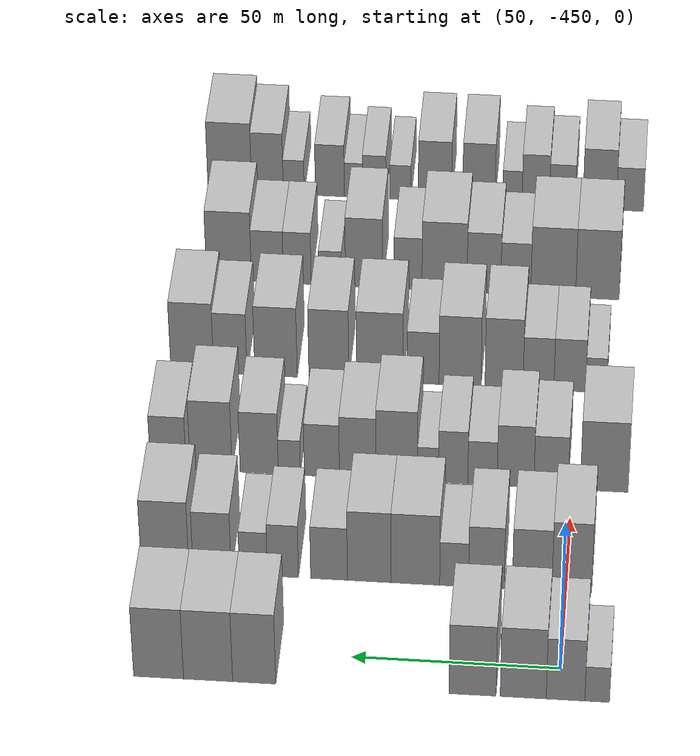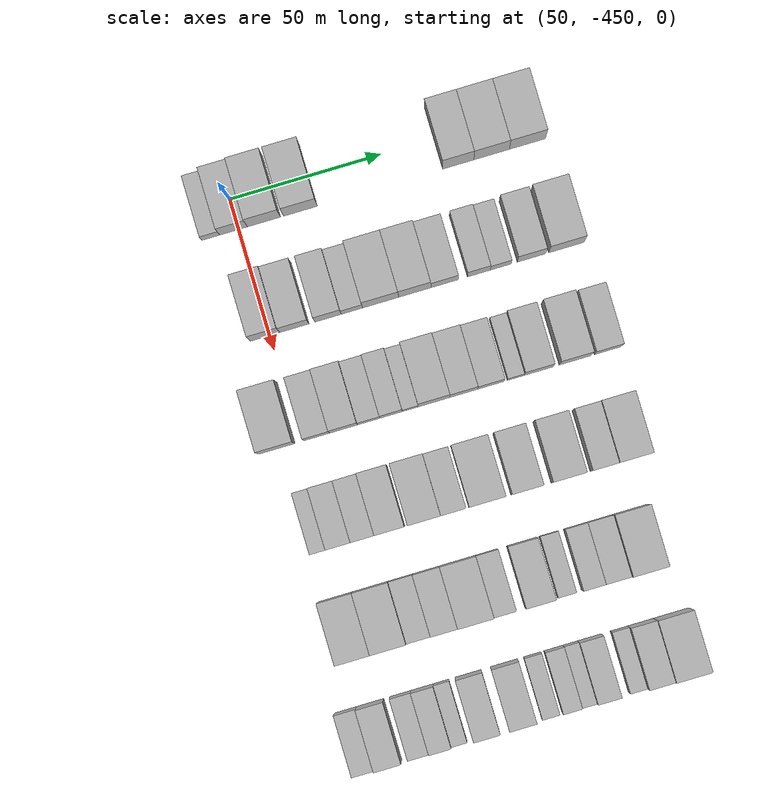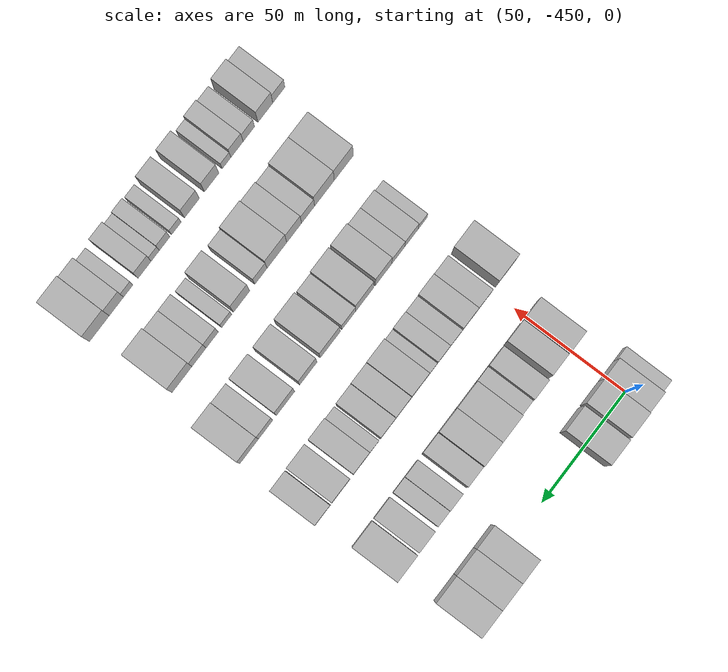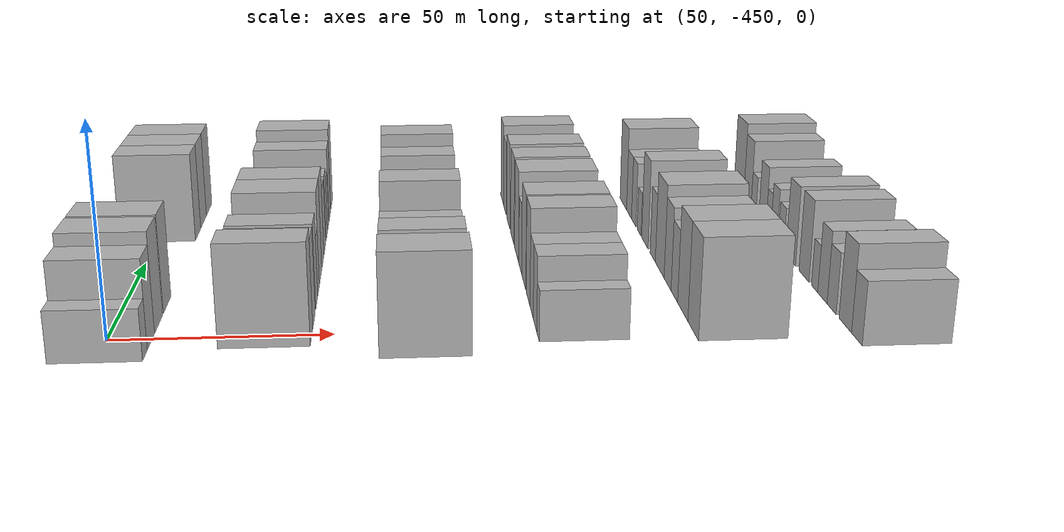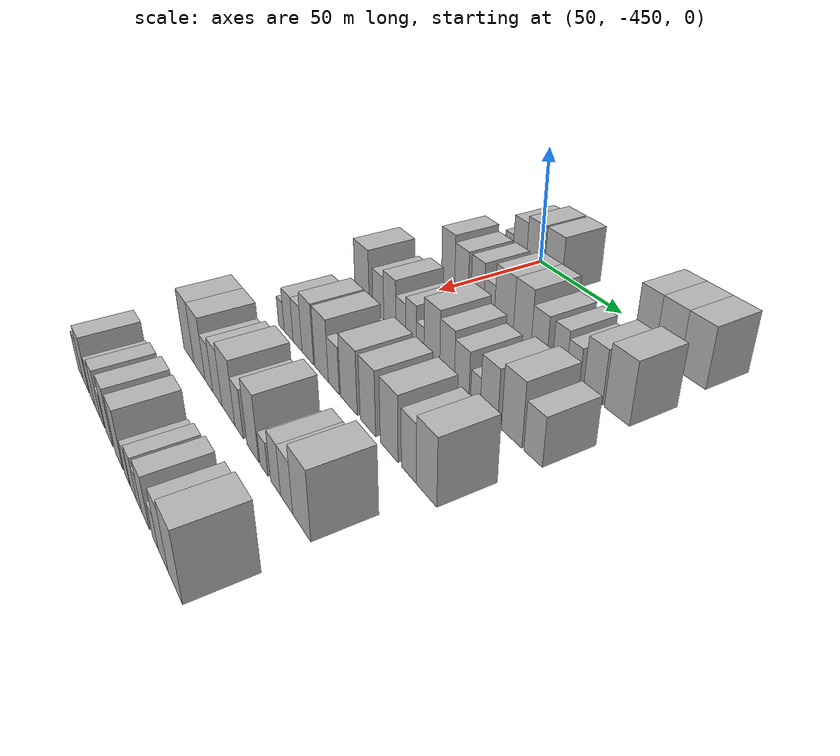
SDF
<sdf version="1.6">
 <world name="default">
  <model name="building_9">
   <static>1</static>
   <pose>50.0000 -459.1418 0 0.000000 0.000000 0.000000</pose>
   <link name="link">
    <pose>0 0 6.00 0 0 0</pose>
    <collision name="collision"><geometry><box><size>20.0000 5.8550 12.0000</size></box></geometry></collision>
    <visual name="visual">
     <cast_shadows>0</cast_shadows>
     <geometry><box><size>20.0000 5.8550 12.0000</size></box></geometry>
     <material>
      <script>
       <uri>model://HANNAS_wall/materials/scripts</uri>
       <uri>model://HANNAS_wall/materials/textures</uri>
       <name>vrc/HANNAS_wall</name>
      </script>
     </material>
    </visual>
   </link>
  </model>
  <model name="building_10">
   <static>1</static>
   <pose>50.0000 -451.6347 0 0.000000 0.000000 0.000000</pose>
   <link name="link">
    <pose>0 0 10.50 0 0 0</pose>
    <collision name="collision"><geometry><box><size>20.0000 9.1591 21.0000</size></box></geometry></collision>
    <visual name="visual">
     <cast_shadows>0</cast_shadows>
     <geometry><box><size>20.0000 9.1591 21.0000</size></box></geometry>
     <material>
      <script>
       <uri>model://HANNAS_wall/materials/scripts</uri>
       <uri>model://HANNAS_wall/materials/textures</uri>
       <name>vrc/HANNAS_wall</name>
      </script>
     </material>
    </visual>
   </link>
  </model>
  <model name="building_11">
   <static>1</static>
   <pose>50.0000 -441.5983 0 0.000000 0.000000 0.000000</pose>
   <link name="link">
    <pose>0 0 12.00 0 0 0</pose>
    <collision name="collision"><geometry><box><size>20.0000 10.9137 24.0000</size></box></geometry></collision>
    <visual name="visual">
     <cast_shadows>0</cast_shadows>
     <geometry><box><size>20.0000 10.9137 24.0000</size></box></geometry>
     <material>
      <script>
       <uri>model://HANNAS_wall/materials/scripts</uri>
       <uri>model://HANNAS_wall/materials/textures</uri>
       <name>vrc/HANNAS_wall</name>
      </script>
     </material>
    </visual>
   </link>
  </model>
  <model name="building_12">
   <static>1</static>
   <pose>50.0000 -429.5720 0 0.000000 0.000000 0.000000</pose>
   <link name="link">
    <pose>0 0 12.00 0 0 0</pose>
    <collision name="collision"><geometry><box><size>20.0000 11.1389 24.0000</size></box></geometry></collision>
    <visual name="visual">
     <cast_shadows>0</cast_shadows>
     <geometry><box><size>20.0000 11.1389 24.0000</size></box></geometry>
     <material>
      <script>
       <uri>model://HANNAS_wall/materials/scripts</uri>
       <uri>model://HANNAS_wall/materials/textures</uri>
       <name>vrc/HANNAS_wall</name>
      </script>
     </material>
    </visual>
   </link>
  </model>
  <model name="building_13">
   <static>1</static>
   <pose>50.0000 -377.5228 0 0.000000 0.000000 0.000000</pose>
   <link name="link">
    <pose>0 0 12.00 0 0 0</pose>
    <collision name="collision"><geometry><box><size>20.0000 10.3199 24.0000</size></box></geometry></collision>
    <visual name="visual">
     <cast_shadows>0</cast_shadows>
     <geometry><box><size>20.0000 10.3199 24.0000</size></box></geometry>
     <material>
      <script>
       <uri>model://HANNAS_wall/materials/scripts</uri>
       <uri>model://HANNAS_wall/materials/textures</uri>
       <name>vrc/HANNAS_wall</name>
      </script>
     </material>
    </visual>
   </link>
  </model>
  <model name="building_14">
   <static>1</static>
   <pose>50.0000 -366.5025 0 0.000000 0.000000 0.000000</pose>
   <link name="link">
    <pose>0 0 12.00 0 0 0</pose>
    <collision name="collision"><geometry><box><size>20.0000 11.7208 24.0000</size></box></geometry></collision>
    <visual name="visual">
     <cast_shadows>0</cast_shadows>
     <geometry><box><size>20.0000 11.7208 24.0000</size></box></geometry>
     <material>
      <script>
       <uri>model://HANNAS_wall/materials/scripts</uri>
       <uri>model://HANNAS_wall/materials/textures</uri>
       <name>vrc/HANNAS_wall</name>
      </script>
     </material>
    </visual>
   </link>
  </model>
  <model name="building_15">
   <static>1</static>
   <pose>50.0000 -354.6723 0 0.000000 0.000000 0.000000</pose>
   <link name="link">
    <pose>0 0 12.00 0 0 0</pose>
    <collision name="collision"><geometry><box><size>20.0000 11.9396 24.0000</size></box></geometry></collision>
    <visual name="visual">
     <cast_shadows>0</cast_shadows>
     <geometry><box><size>20.0000 11.9396 24.0000</size></box></geometry>
     <material>
      <script>
       <uri>model://HANNAS_wall/materials/scripts</uri>
       <uri>model://HANNAS_wall/materials/textures</uri>
       <name>vrc/HANNAS_wall</name>
      </script>
     </material>
    </visual>
   </link>
  </model>
  <model name="building_128">
   <static>1</static>
   <pose>85.0000 -451.5183 0 0.000000 0.000000 0.000000</pose>
   <link name="link">
    <pose>0 0 12.00 0 0 0</pose>
    <collision name="collision"><geometry><box><size>20.0000 9.6491 24.0000</size></box></geometry></collision>
    <visual name="visual">
     <cast_shadows>0</cast_shadows>
     <geometry><box><size>20.0000 9.6491 24.0000</size></box></geometry>
     <material>
      <script>
       <uri>model://HANNAS_wall/materials/scripts</uri>
       <uri>model://HANNAS_wall/materials/textures</uri>
       <name>vrc/HANNAS_wall</name>
      </script>
     </material>
    </visual>
   </link>
  </model>
  <model name="building_129">
   <static>1</static>
   <pose>85.0000 -441.8852 0 0.000000 0.000000 0.000000</pose>
   <link name="link">
    <pose>0 0 10.50 0 0 0</pose>
    <collision name="collision"><geometry><box><size>20.0000 9.6170 21.0000</size></box></geometry></collision>
    <visual name="visual">
     <cast_shadows>0</cast_shadows>
     <geometry><box><size>20.0000 9.6170 21.0000</size></box></geometry>
     <material>
      <script>
       <uri>model://HANNAS_wall/materials/scripts</uri>
       <uri>model://HANNAS_wall/materials/textures</uri>
       <name>vrc/HANNAS_wall</name>
      </script>
     </material>
    </visual>
   </link>
  </model>
  <model name="building_130">
   <static>1</static>
   <pose>85.0000 -430.7353 0 0.000000 0.000000 0.000000</pose>
   <link name="link">
    <pose>0 0 10.50 0 0 0</pose>
    <collision name="collision"><geometry><box><size>20.0000 8.6828 21.0000</size></box></geometry></collision>
    <visual name="visual">
     <cast_shadows>0</cast_shadows>
     <geometry><box><size>20.0000 8.6828 21.0000</size></box></geometry>
     <material>
      <script>
       <uri>model://HANNAS_wall/materials/scripts</uri>
       <uri>model://HANNAS_wall/materials/textures</uri>
       <name>vrc/HANNAS_wall</name>
      </script>
     </material>
    </visual>
   </link>
  </model>
  <model name="building_131">
   <static>1</static>
   <pose>85.0000 -422.8857 0 0.000000 0.000000 0.000000</pose>
   <link name="link">
    <pose>0 0 7.50 0 0 0</pose>
    <collision name="collision"><geometry><box><size>20.0000 7.0164 15.0000</size></box></geometry></collision>
    <visual name="visual">
     <cast_shadows>0</cast_shadows>
     <geometry><box><size>20.0000 7.0164 15.0000</size></box></geometry>
     <material>
      <script>
       <uri>model://HANNAS_wall/materials/scripts</uri>
       <uri>model://HANNAS_wall/materials/textures</uri>
       <name>vrc/HANNAS_wall</name>
      </script>
     </material>
    </visual>
   </link>
  </model>
  <model name="building_132">
   <static>1</static>
   <pose>85.0000 -413.4418 0 0.000000 0.000000 0.000000</pose>
   <link name="link">
    <pose>0 0 12.00 0 0 0</pose>
    <collision name="collision"><geometry><box><size>20.0000 11.8714 24.0000</size></box></geometry></collision>
    <visual name="visual">
     <cast_shadows>0</cast_shadows>
     <geometry><box><size>20.0000 11.8714 24.0000</size></box></geometry>
     <material>
      <script>
       <uri>model://HANNAS_wall/materials/scripts</uri>
       <uri>model://HANNAS_wall/materials/textures</uri>
       <name>vrc/HANNAS_wall</name>
      </script>
     </material>
    </visual>
   </link>
  </model>
  <model name="building_133">
   <static>1</static>
   <pose>85.0000 -402.1924 0 0.000000 0.000000 0.000000</pose>
   <link name="link">
    <pose>0 0 12.00 0 0 0</pose>
    <collision name="collision"><geometry><box><size>20.0000 10.6272 24.0000</size></box></geometry></collision>
    <visual name="visual">
     <cast_shadows>0</cast_shadows>
     <geometry><box><size>20.0000 10.6272 24.0000</size></box></geometry>
     <material>
      <script>
       <uri>model://HANNAS_wall/materials/scripts</uri>
       <uri>model://HANNAS_wall/materials/textures</uri>
       <name>vrc/HANNAS_wall</name>
      </script>
     </material>
    </visual>
   </link>
  </model>
  <model name="building_134">
   <static>1</static>
   <pose>85.0000 -392.3873 0 0.000000 0.000000 0.000000</pose>
   <link name="link">
    <pose>0 0 9.00 0 0 0</pose>
    <collision name="collision"><geometry><box><size>20.0000 8.9831 18.0000</size></box></geometry></collision>
    <visual name="visual">
     <cast_shadows>0</cast_shadows>
     <geometry><box><size>20.0000 8.9831 18.0000</size></box></geometry>
     <material>
      <script>
       <uri>model://HANNAS_wall/materials/scripts</uri>
       <uri>model://HANNAS_wall/materials/textures</uri>
       <name>vrc/HANNAS_wall</name>
      </script>
     </material>
    </visual>
   </link>
  </model>
  <model name="building_135">
   <static>1</static>
   <pose>85.0000 -381.1187 0 0.000000 0.000000 0.000000</pose>
   <link name="link">
    <pose>0 0 9.00 0 0 0</pose>
    <collision name="collision"><geometry><box><size>20.0000 7.5542 18.0000</size></box></geometry></collision>
    <visual name="visual">
     <cast_shadows>0</cast_shadows>
     <geometry><box><size>20.0000 7.5542 18.0000</size></box></geometry>
     <material>
      <script>
       <uri>model://HANNAS_wall/materials/scripts</uri>
       <uri>model://HANNAS_wall/materials/textures</uri>
       <name>vrc/HANNAS_wall</name>
      </script>
     </material>
    </visual>
   </link>
  </model>
  <model name="building_136">
   <static>1</static>
   <pose>85.0000 -373.9015 0 0.000000 0.000000 0.000000</pose>
   <link name="link">
    <pose>0 0 7.50 0 0 0</pose>
    <collision name="collision"><geometry><box><size>20.0000 6.8801 15.0000</size></box></geometry></collision>
    <visual name="visual">
     <cast_shadows>0</cast_shadows>
     <geometry><box><size>20.0000 6.8801 15.0000</size></box></geometry>
     <material>
      <script>
       <uri>model://HANNAS_wall/materials/scripts</uri>
       <uri>model://HANNAS_wall/materials/textures</uri>
       <name>vrc/HANNAS_wall</name>
      </script>
     </material>
    </visual>
   </link>
  </model>
  <model name="building_137">
   <static>1</static>
   <pose>85.0000 -363.7812 0 0.000000 0.000000 0.000000</pose>
   <link name="link">
    <pose>0 0 10.50 0 0 0</pose>
    <collision name="collision"><geometry><box><size>20.0000 9.3604 21.0000</size></box></geometry></collision>
    <visual name="visual">
     <cast_shadows>0</cast_shadows>
     <geometry><box><size>20.0000 9.3604 21.0000</size></box></geometry>
     <material>
      <script>
       <uri>model://HANNAS_wall/materials/scripts</uri>
       <uri>model://HANNAS_wall/materials/textures</uri>
       <name>vrc/HANNAS_wall</name>
      </script>
     </material>
    </visual>
   </link>
  </model>
  <model name="building_138">
   <static>1</static>
   <pose>85.0000 -352.2642 0 0.000000 0.000000 0.000000</pose>
   <link name="link">
    <pose>0 0 12.00 0 0 0</pose>
    <collision name="collision"><geometry><box><size>20.0000 11.6736 24.0000</size></box></geometry></collision>
    <visual name="visual">
     <cast_shadows>0</cast_shadows>
     <geometry><box><size>20.0000 11.6736 24.0000</size></box></geometry>
     <material>
      <script>
       <uri>model://HANNAS_wall/materials/scripts</uri>
       <uri>model://HANNAS_wall/materials/textures</uri>
       <name>vrc/HANNAS_wall</name>
      </script>
     </material>
    </visual>
   </link>
  </model>
  <model name="building_255">
   <static>1</static>
   <pose>120.0000 -457.9702 0 0.000000 0.000000 0.000000</pose>
   <link name="link">
    <pose>0 0 12.00 0 0 0</pose>
    <collision name="collision"><geometry><box><size>20.0000 11.8944 24.0000</size></box></geometry></collision>
    <visual name="visual">
     <cast_shadows>0</cast_shadows>
     <geometry><box><size>20.0000 11.8944 24.0000</size></box></geometry>
     <material>
      <script>
       <uri>model://HANNAS_wall/materials/scripts</uri>
       <uri>model://HANNAS_wall/materials/textures</uri>
       <name>vrc/HANNAS_wall</name>
      </script>
     </material>
    </visual>
   </link>
  </model>
  <model name="building_256">
   <static>1</static>
   <pose>120.0000 -444.7597 0 0.000000 0.000000 0.000000</pose>
   <link name="link">
    <pose>0 0 9.00 0 0 0</pose>
    <collision name="collision"><geometry><box><size>20.0000 8.5266 18.0000</size></box></geometry></collision>
    <visual name="visual">
     <cast_shadows>0</cast_shadows>
     <geometry><box><size>20.0000 8.5266 18.0000</size></box></geometry>
     <material>
      <script>
       <uri>model://HANNAS_wall/materials/scripts</uri>
       <uri>model://HANNAS_wall/materials/textures</uri>
       <name>vrc/HANNAS_wall</name>
      </script>
     </material>
    </visual>
   </link>
  </model>
  <model name="building_257">
   <static>1</static>
   <pose>120.0000 -435.9068 0 0.000000 0.000000 0.000000</pose>
   <link name="link">
    <pose>0 0 10.50 0 0 0</pose>
    <collision name="collision"><geometry><box><size>20.0000 9.1792 21.0000</size></box></geometry></collision>
    <visual name="visual">
     <cast_shadows>0</cast_shadows>
     <geometry><box><size>20.0000 9.1792 21.0000</size></box></geometry>
     <material>
      <script>
       <uri>model://HANNAS_wall/materials/scripts</uri>
       <uri>model://HANNAS_wall/materials/textures</uri>
       <name>vrc/HANNAS_wall</name>
      </script>
     </material>
    </visual>
   </link>
  </model>
  <model name="building_258">
   <static>1</static>
   <pose>120.0000 -427.6700 0 0.000000 0.000000 0.000000</pose>
   <link name="link">
    <pose>0 0 7.50 0 0 0</pose>
    <collision name="collision"><geometry><box><size>20.0000 7.2944 15.0000</size></box></geometry></collision>
    <visual name="visual">
     <cast_shadows>0</cast_shadows>
     <geometry><box><size>20.0000 7.2944 15.0000</size></box></geometry>
     <material>
      <script>
       <uri>model://HANNAS_wall/materials/scripts</uri>
       <uri>model://HANNAS_wall/materials/textures</uri>
       <name>vrc/HANNAS_wall</name>
      </script>
     </material>
    </visual>
   </link>
  </model>
  <model name="building_259">
   <static>1</static>
   <pose>120.0000 -420.3431 0 0.000000 0.000000 0.000000</pose>
   <link name="link">
    <pose>0 0 9.00 0 0 0</pose>
    <collision name="collision"><geometry><box><size>20.0000 7.3594 18.0000</size></box></geometry></collision>
    <visual name="visual">
     <cast_shadows>0</cast_shadows>
     <geometry><box><size>20.0000 7.3594 18.0000</size></box></geometry>
     <material>
      <script>
       <uri>model://HANNAS_wall/materials/scripts</uri>
       <uri>model://HANNAS_wall/materials/textures</uri>
       <name>vrc/HANNAS_wall</name>
      </script>
     </material>
    </visual>
   </link>
  </model>
  <model name="building_260">
   <static>1</static>
   <pose>120.0000 -414.0627 0 0.000000 0.000000 0.000000</pose>
   <link name="link">
    <pose>0 0 6.00 0 0 0</pose>
    <collision name="collision"><geometry><box><size>20.0000 5.2013 12.0000</size></box></geometry></collision>
    <visual name="visual">
     <cast_shadows>0</cast_shadows>
     <geometry><box><size>20.0000 5.2013 12.0000</size></box></geometry>
     <material>
      <script>
       <uri>model://HANNAS_wall/materials/scripts</uri>
       <uri>model://HANNAS_wall/materials/textures</uri>
       <name>vrc/HANNAS_wall</name>
      </script>
     </material>
    </visual>
   </link>
  </model>
  <model name="building_261">
   <static>1</static>
   <pose>120.0000 -406.2635 0 0.000000 0.000000 0.000000</pose>
   <link name="link">
    <pose>0 0 12.00 0 0 0</pose>
    <collision name="collision"><geometry><box><size>20.0000 10.3972 24.0000</size></box></geometry></collision>
    <visual name="visual">
     <cast_shadows>0</cast_shadows>
     <geometry><box><size>20.0000 10.3972 24.0000</size></box></geometry>
     <material>
      <script>
       <uri>model://HANNAS_wall/materials/scripts</uri>
       <uri>model://HANNAS_wall/materials/textures</uri>
       <name>vrc/HANNAS_wall</name>
      </script>
     </material>
    </visual>
   </link>
  </model>
  <model name="building_262">
   <static>1</static>
   <pose>120.0000 -396.5025 0 0.000000 0.000000 0.000000</pose>
   <link name="link">
    <pose>0 0 10.50 0 0 0</pose>
    <collision name="collision"><geometry><box><size>20.0000 9.1247 21.0000</size></box></geometry></collision>
    <visual name="visual">
     <cast_shadows>0</cast_shadows>
     <geometry><box><size>20.0000 9.1247 21.0000</size></box></geometry>
     <material>
      <script>
       <uri>model://HANNAS_wall/materials/scripts</uri>
       <uri>model://HANNAS_wall/materials/textures</uri>
       <name>vrc/HANNAS_wall</name>
      </script>
     </material>
    </visual>
   </link>
  </model>
  <model name="building_263">
   <static>1</static>
   <pose>120.0000 -387.5555 0 0.000000 0.000000 0.000000</pose>
   <link name="link">
    <pose>0 0 9.00 0 0 0</pose>
    <collision name="collision"><geometry><box><size>20.0000 8.7693 18.0000</size></box></geometry></collision>
    <visual name="visual">
     <cast_shadows>0</cast_shadows>
     <geometry><box><size>20.0000 8.7693 18.0000</size></box></geometry>
     <material>
      <script>
       <uri>model://HANNAS_wall/materials/scripts</uri>
       <uri>model://HANNAS_wall/materials/textures</uri>
       <name>vrc/HANNAS_wall</name>
      </script>
     </material>
    </visual>
   </link>
  </model>
  <model name="building_264">
   <static>1</static>
   <pose>120.0000 -379.4111 0 0.000000 0.000000 0.000000</pose>
   <link name="link">
    <pose>0 0 6.00 0 0 0</pose>
    <collision name="collision"><geometry><box><size>20.0000 5.5196 12.0000</size></box></geometry></collision>
    <visual name="visual">
     <cast_shadows>0</cast_shadows>
     <geometry><box><size>20.0000 5.5196 12.0000</size></box></geometry>
     <material>
      <script>
       <uri>model://HANNAS_wall/materials/scripts</uri>
       <uri>model://HANNAS_wall/materials/textures</uri>
       <name>vrc/HANNAS_wall</name>
      </script>
     </material>
    </visual>
   </link>
  </model>
  <model name="building_265">
   <static>1</static>
   <pose>120.0000 -371.8616 0 0.000000 0.000000 0.000000</pose>
   <link name="link">
    <pose>0 0 10.50 0 0 0</pose>
    <collision name="collision"><geometry><box><size>20.0000 9.5793 21.0000</size></box></geometry></collision>
    <visual name="visual">
     <cast_shadows>0</cast_shadows>
     <geometry><box><size>20.0000 9.5793 21.0000</size></box></geometry>
     <material>
      <script>
       <uri>model://HANNAS_wall/materials/scripts</uri>
       <uri>model://HANNAS_wall/materials/textures</uri>
       <name>vrc/HANNAS_wall</name>
      </script>
     </material>
    </visual>
   </link>
  </model>
  <model name="building_266">
   <static>1</static>
   <pose>120.0000 -359.7994 0 0.000000 0.000000 0.000000</pose>
   <link name="link">
    <pose>0 0 12.00 0 0 0</pose>
    <collision name="collision"><geometry><box><size>20.0000 10.5451 24.0000</size></box></geometry></collision>
    <visual name="visual">
     <cast_shadows>0</cast_shadows>
     <geometry><box><size>20.0000 10.5451 24.0000</size></box></geometry>
     <material>
      <script>
       <uri>model://HANNAS_wall/materials/scripts</uri>
       <uri>model://HANNAS_wall/materials/textures</uri>
       <name>vrc/HANNAS_wall</name>
      </script>
     </material>
    </visual>
   </link>
  </model>
  <model name="building_267">
   <static>1</static>
   <pose>120.0000 -349.0407 0 0.000000 0.000000 0.000000</pose>
   <link name="link">
    <pose>0 0 9.00 0 0 0</pose>
    <collision name="collision"><geometry><box><size>20.0000 8.9724 18.0000</size></box></geometry></collision>
    <visual name="visual">
     <cast_shadows>0</cast_shadows>
     <geometry><box><size>20.0000 8.9724 18.0000</size></box></geometry>
     <material>
      <script>
       <uri>model://HANNAS_wall/materials/scripts</uri>
       <uri>model://HANNAS_wall/materials/textures</uri>
       <name>vrc/HANNAS_wall</name>
      </script>
     </material>
    </visual>
   </link>
  </model>
  <model name="building_377">
   <static>1</static>
   <pose>155.0000 -454.5300 0 0.000000 0.000000 0.000000</pose>
   <link name="link">
    <pose>0 0 6.00 0 0 0</pose>
    <collision name="collision"><geometry><box><size>20.0000 5.3534 12.0000</size></box></geometry></collision>
    <visual name="visual">
     <cast_shadows>0</cast_shadows>
     <geometry><box><size>20.0000 5.3534 12.0000</size></box></geometry>
     <material>
      <script>
       <uri>model://HANNAS_wall/materials/scripts</uri>
       <uri>model://HANNAS_wall/materials/textures</uri>
       <name>vrc/HANNAS_wall</name>
      </script>
     </material>
    </visual>
   </link>
  </model>
  <model name="building_378">
   <static>1</static>
   <pose>155.0000 -447.8064 0 0.000000 0.000000 0.000000</pose>
   <link name="link">
    <pose>0 0 9.00 0 0 0</pose>
    <collision name="collision"><geometry><box><size>20.0000 8.0937 18.0000</size></box></geometry></collision>
    <visual name="visual">
     <cast_shadows>0</cast_shadows>
     <geometry><box><size>20.0000 8.0937 18.0000</size></box></geometry>
     <material>
      <script>
       <uri>model://HANNAS_wall/materials/scripts</uri>
       <uri>model://HANNAS_wall/materials/textures</uri>
       <name>vrc/HANNAS_wall</name>
      </script>
     </material>
    </visual>
   </link>
  </model>
  <model name="building_379">
   <static>1</static>
   <pose>155.0000 -439.8365 0 0.000000 0.000000 0.000000</pose>
   <link name="link">
    <pose>0 0 9.00 0 0 0</pose>
    <collision name="collision"><geometry><box><size>20.0000 7.8460 18.0000</size></box></geometry></collision>
    <visual name="visual">
     <cast_shadows>0</cast_shadows>
     <geometry><box><size>20.0000 7.8460 18.0000</size></box></geometry>
     <material>
      <script>
       <uri>model://HANNAS_wall/materials/scripts</uri>
       <uri>model://HANNAS_wall/materials/textures</uri>
       <name>vrc/HANNAS_wall</name>
      </script>
     </material>
    </visual>
   </link>
  </model>
  <model name="building_380">
   <static>1</static>
   <pose>155.0000 -431.0524 0 0.000000 0.000000 0.000000</pose>
   <link name="link">
    <pose>0 0 12.00 0 0 0</pose>
    <collision name="collision"><geometry><box><size>20.0000 9.7224 24.0000</size></box></geometry></collision>
    <visual name="visual">
     <cast_shadows>0</cast_shadows>
     <geometry><box><size>20.0000 9.7224 24.0000</size></box></geometry>
     <material>
      <script>
       <uri>model://HANNAS_wall/materials/scripts</uri>
       <uri>model://HANNAS_wall/materials/textures</uri>
       <name>vrc/HANNAS_wall</name>
      </script>
     </material>
    </visual>
   </link>
  </model>
  <model name="building_381">
   <static>1</static>
   <pose>155.0000 -419.8238 0 0.000000 0.000000 0.000000</pose>
   <link name="link">
    <pose>0 0 12.00 0 0 0</pose>
    <collision name="collision"><geometry><box><size>20.0000 10.7347 24.0000</size></box></geometry></collision>
    <visual name="visual">
     <cast_shadows>0</cast_shadows>
     <geometry><box><size>20.0000 10.7347 24.0000</size></box></geometry>
     <material>
      <script>
       <uri>model://HANNAS_wall/materials/scripts</uri>
       <uri>model://HANNAS_wall/materials/textures</uri>
       <name>vrc/HANNAS_wall</name>
      </script>
     </material>
    </visual>
   </link>
  </model>
  <model name="building_382">
   <static>1</static>
   <pose>155.0000 -410.3595 0 0.000000 0.000000 0.000000</pose>
   <link name="link">
    <pose>0 0 9.00 0 0 0</pose>
    <collision name="collision"><geometry><box><size>20.0000 8.1938 18.0000</size></box></geometry></collision>
    <visual name="visual">
     <cast_shadows>0</cast_shadows>
     <geometry><box><size>20.0000 8.1938 18.0000</size></box></geometry>
     <material>
      <script>
       <uri>model://HANNAS_wall/materials/scripts</uri>
       <uri>model://HANNAS_wall/materials/textures</uri>
       <name>vrc/HANNAS_wall</name>
      </script>
     </material>
    </visual>
   </link>
  </model>
  <model name="building_383">
   <static>1</static>
   <pose>155.0000 -399.3281 0 0.000000 0.000000 0.000000</pose>
   <link name="link">
    <pose>0 0 12.00 0 0 0</pose>
    <collision name="collision"><geometry><box><size>20.0000 11.8690 24.0000</size></box></geometry></collision>
    <visual name="visual">
     <cast_shadows>0</cast_shadows>
     <geometry><box><size>20.0000 11.8690 24.0000</size></box></geometry>
     <material>
      <script>
       <uri>model://HANNAS_wall/materials/scripts</uri>
       <uri>model://HANNAS_wall/materials/textures</uri>
       <name>vrc/HANNAS_wall</name>
      </script>
     </material>
    </visual>
   </link>
  </model>
  <model name="building_384">
   <static>1</static>
   <pose>155.0000 -386.2836 0 0.000000 0.000000 0.000000</pose>
   <link name="link">
    <pose>0 0 12.00 0 0 0</pose>
    <collision name="collision"><geometry><box><size>20.0000 10.2199 24.0000</size></box></geometry></collision>
    <visual name="visual">
     <cast_shadows>0</cast_shadows>
     <geometry><box><size>20.0000 10.2199 24.0000</size></box></geometry>
     <material>
      <script>
       <uri>model://HANNAS_wall/materials/scripts</uri>
       <uri>model://HANNAS_wall/materials/textures</uri>
       <name>vrc/HANNAS_wall</name>
      </script>
     </material>
    </visual>
   </link>
  </model>
  <model name="building_385">
   <static>1</static>
   <pose>155.0000 -372.7306 0 0.000000 0.000000 0.000000</pose>
   <link name="link">
    <pose>0 0 12.00 0 0 0</pose>
    <collision name="collision"><geometry><box><size>20.0000 10.8861 24.0000</size></box></geometry></collision>
    <visual name="visual">
     <cast_shadows>0</cast_shadows>
     <geometry><box><size>20.0000 10.8861 24.0000</size></box></geometry>
     <material>
      <script>
       <uri>model://HANNAS_wall/materials/scripts</uri>
       <uri>model://HANNAS_wall/materials/textures</uri>
       <name>vrc/HANNAS_wall</name>
      </script>
     </material>
    </visual>
   </link>
  </model>
  <model name="building_386">
   <static>1</static>
   <pose>155.0000 -361.0077 0 0.000000 0.000000 0.000000</pose>
   <link name="link">
    <pose>0 0 10.50 0 0 0</pose>
    <collision name="collision"><geometry><box><size>20.0000 8.5597 21.0000</size></box></geometry></collision>
    <visual name="visual">
     <cast_shadows>0</cast_shadows>
     <geometry><box><size>20.0000 8.5597 21.0000</size></box></geometry>
     <material>
      <script>
       <uri>model://HANNAS_wall/materials/scripts</uri>
       <uri>model://HANNAS_wall/materials/textures</uri>
       <name>vrc/HANNAS_wall</name>
      </script>
     </material>
    </visual>
   </link>
  </model>
  <model name="building_387">
   <static>1</static>
   <pose>155.0000 -351.2361 0 0.000000 0.000000 0.000000</pose>
   <link name="link">
    <pose>0 0 12.00 0 0 0</pose>
    <collision name="collision"><geometry><box><size>20.0000 10.9836 24.0000</size></box></geometry></collision>
    <visual name="visual">
     <cast_shadows>0</cast_shadows>
     <geometry><box><size>20.0000 10.9836 24.0000</size></box></geometry>
     <material>
      <script>
       <uri>model://HANNAS_wall/materials/scripts</uri>
       <uri>model://HANNAS_wall/materials/textures</uri>
       <name>vrc/HANNAS_wall</name>
      </script>
     </material>
    </visual>
   </link>
  </model>
  <model name="building_501">
   <static>1</static>
   <pose>190.0000 -453.3709 0 0.000000 0.000000 0.000000</pose>
   <link name="link">
    <pose>0 0 12.00 0 0 0</pose>
    <collision name="collision"><geometry><box><size>20.0000 11.3057 24.0000</size></box></geometry></collision>
    <visual name="visual">
     <cast_shadows>0</cast_shadows>
     <geometry><box><size>20.0000 11.3057 24.0000</size></box></geometry>
     <material>
      <script>
       <uri>model://HANNAS_wall/materials/scripts</uri>
       <uri>model://HANNAS_wall/materials/textures</uri>
       <name>vrc/HANNAS_wall</name>
      </script>
     </material>
    </visual>
   </link>
  </model>
  <model name="building_502">
   <static>1</static>
   <pose>190.0000 -441.8790 0 0.000000 0.000000 0.000000</pose>
   <link name="link">
    <pose>0 0 12.00 0 0 0</pose>
    <collision name="collision"><geometry><box><size>20.0000 11.6782 24.0000</size></box></geometry></collision>
    <visual name="visual">
     <cast_shadows>0</cast_shadows>
     <geometry><box><size>20.0000 11.6782 24.0000</size></box></geometry>
     <material>
      <script>
       <uri>model://HANNAS_wall/materials/scripts</uri>
       <uri>model://HANNAS_wall/materials/textures</uri>
       <name>vrc/HANNAS_wall</name>
      </script>
     </material>
    </visual>
   </link>
  </model>
  <model name="building_503">
   <static>1</static>
   <pose>190.0000 -432.1210 0 0.000000 0.000000 0.000000</pose>
   <link name="link">
    <pose>0 0 9.00 0 0 0</pose>
    <collision name="collision"><geometry><box><size>20.0000 7.8377 18.0000</size></box></geometry></collision>
    <visual name="visual">
     <cast_shadows>0</cast_shadows>
     <geometry><box><size>20.0000 7.8377 18.0000</size></box></geometry>
     <material>
      <script>
       <uri>model://HANNAS_wall/materials/scripts</uri>
       <uri>model://HANNAS_wall/materials/textures</uri>
       <name>vrc/HANNAS_wall</name>
      </script>
     </material>
    </visual>
   </link>
  </model>
  <model name="building_504">
   <static>1</static>
   <pose>190.0000 -423.8032 0 0.000000 0.000000 0.000000</pose>
   <link name="link">
    <pose>0 0 10.50 0 0 0</pose>
    <collision name="collision"><geometry><box><size>20.0000 8.7981 21.0000</size></box></geometry></collision>
    <visual name="visual">
     <cast_shadows>0</cast_shadows>
     <geometry><box><size>20.0000 8.7981 21.0000</size></box></geometry>
     <material>
      <script>
       <uri>model://HANNAS_wall/materials/scripts</uri>
       <uri>model://HANNAS_wall/materials/textures</uri>
       <name>vrc/HANNAS_wall</name>
      </script>
     </material>
    </visual>
   </link>
  </model>
  <model name="building_505">
   <static>1</static>
   <pose>190.0000 -413.5206 0 0.000000 0.000000 0.000000</pose>
   <link name="link">
    <pose>0 0 12.00 0 0 0</pose>
    <collision name="collision"><geometry><box><size>20.0000 11.7671 24.0000</size></box></geometry></collision>
    <visual name="visual">
     <cast_shadows>0</cast_shadows>
     <geometry><box><size>20.0000 11.7671 24.0000</size></box></geometry>
     <material>
      <script>
       <uri>model://HANNAS_wall/materials/scripts</uri>
       <uri>model://HANNAS_wall/materials/textures</uri>
       <name>vrc/HANNAS_wall</name>
      </script>
     </material>
    </visual>
   </link>
  </model>
  <model name="building_506">
   <static>1</static>
   <pose>190.0000 -403.9830 0 0.000000 0.000000 0.000000</pose>
   <link name="link">
    <pose>0 0 9.00 0 0 0</pose>
    <collision name="collision"><geometry><box><size>20.0000 7.3081 18.0000</size></box></geometry></collision>
    <visual name="visual">
     <cast_shadows>0</cast_shadows>
     <geometry><box><size>20.0000 7.3081 18.0000</size></box></geometry>
     <material>
      <script>
       <uri>model://HANNAS_wall/materials/scripts</uri>
       <uri>model://HANNAS_wall/materials/textures</uri>
       <name>vrc/HANNAS_wall</name>
      </script>
     </material>
    </visual>
   </link>
  </model>
  <model name="building_507">
   <static>1</static>
   <pose>190.0000 -392.4713 0 0.000000 0.000000 0.000000</pose>
   <link name="link">
    <pose>0 0 12.00 0 0 0</pose>
    <collision name="collision"><geometry><box><size>20.0000 9.7153 24.0000</size></box></geometry></collision>
    <visual name="visual">
     <cast_shadows>0</cast_shadows>
     <geometry><box><size>20.0000 9.7153 24.0000</size></box></geometry>
     <material>
      <script>
       <uri>model://HANNAS_wall/materials/scripts</uri>
       <uri>model://HANNAS_wall/materials/textures</uri>
       <name>vrc/HANNAS_wall</name>
      </script>
     </material>
    </visual>
   </link>
  </model>
  <model name="building_508">
   <static>1</static>
   <pose>190.0000 -383.6159 0 0.000000 0.000000 0.000000</pose>
   <link name="link">
    <pose>0 0 6.00 0 0 0</pose>
    <collision name="collision"><geometry><box><size>20.0000 5.9955 12.0000</size></box></geometry></collision>
    <visual name="visual">
     <cast_shadows>0</cast_shadows>
     <geometry><box><size>20.0000 5.9955 12.0000</size></box></geometry>
     <material>
      <script>
       <uri>model://HANNAS_wall/materials/scripts</uri>
       <uri>model://HANNAS_wall/materials/textures</uri>
       <name>vrc/HANNAS_wall</name>
      </script>
     </material>
    </visual>
   </link>
  </model>
  <model name="building_509">
   <static>1</static>
   <pose>190.0000 -374.9703 0 0.000000 0.000000 0.000000</pose>
   <link name="link">
    <pose>0 0 9.00 0 0 0</pose>
    <collision name="collision"><geometry><box><size>20.0000 7.2955 18.0000</size></box></geometry></collision>
    <visual name="visual">
     <cast_shadows>0</cast_shadows>
     <geometry><box><size>20.0000 7.2955 18.0000</size></box></geometry>
     <material>
      <script>
       <uri>model://HANNAS_wall/materials/scripts</uri>
       <uri>model://HANNAS_wall/materials/textures</uri>
       <name>vrc/HANNAS_wall</name>
      </script>
     </material>
    </visual>
   </link>
  </model>
  <model name="building_510">
   <static>1</static>
   <pose>190.0000 -367.1263 0 0.000000 0.000000 0.000000</pose>
   <link name="link">
    <pose>0 0 9.00 0 0 0</pose>
    <collision name="collision"><geometry><box><size>20.0000 8.3926 18.0000</size></box></geometry></collision>
    <visual name="visual">
     <cast_shadows>0</cast_shadows>
     <geometry><box><size>20.0000 8.3926 18.0000</size></box></geometry>
     <material>
      <script>
       <uri>model://HANNAS_wall/materials/scripts</uri>
       <uri>model://HANNAS_wall/materials/textures</uri>
       <name>vrc/HANNAS_wall</name>
      </script>
     </material>
    </visual>
   </link>
  </model>
  <model name="building_511">
   <static>1</static>
   <pose>190.0000 -357.0535 0 0.000000 0.000000 0.000000</pose>
   <link name="link">
    <pose>0 0 12.00 0 0 0</pose>
    <collision name="collision"><geometry><box><size>20.0000 11.7529 24.0000</size></box></geometry></collision>
    <visual name="visual">
     <cast_shadows>0</cast_shadows>
     <geometry><box><size>20.0000 11.7529 24.0000</size></box></geometry>
     <material>
      <script>
       <uri>model://HANNAS_wall/materials/scripts</uri>
       <uri>model://HANNAS_wall/materials/textures</uri>
       <name>vrc/HANNAS_wall</name>
      </script>
     </material>
    </visual>
   </link>
  </model>
  <model name="building_627">
   <static>1</static>
   <pose>225.0000 -460.5561 0 0.000000 0.000000 0.000000</pose>
   <link name="link">
    <pose>0 0 7.50 0 0 0</pose>
    <collision name="collision"><geometry><box><size>20.0000 7.2316 15.0000</size></box></geometry></collision>
    <visual name="visual">
     <cast_shadows>0</cast_shadows>
     <geometry><box><size>20.0000 7.2316 15.0000</size></box></geometry>
     <material>
      <script>
       <uri>model://HANNAS_wall/materials/scripts</uri>
       <uri>model://HANNAS_wall/materials/textures</uri>
       <name>vrc/HANNAS_wall</name>
      </script>
     </material>
    </visual>
   </link>
  </model>
  <model name="building_628">
   <static>1</static>
   <pose>225.0000 -452.4936 0 0.000000 0.000000 0.000000</pose>
   <link name="link">
    <pose>0 0 10.50 0 0 0</pose>
    <collision name="collision"><geometry><box><size>20.0000 8.8933 21.0000</size></box></geometry></collision>
    <visual name="visual">
     <cast_shadows>0</cast_shadows>
     <geometry><box><size>20.0000 8.8933 21.0000</size></box></geometry>
     <material>
      <script>
       <uri>model://HANNAS_wall/materials/scripts</uri>
       <uri>model://HANNAS_wall/materials/textures</uri>
       <name>vrc/HANNAS_wall</name>
      </script>
     </material>
    </visual>
   </link>
  </model>
  <model name="building_629">
   <static>1</static>
   <pose>225.0000 -442.6075 0 0.000000 0.000000 0.000000</pose>
   <link name="link">
    <pose>0 0 7.50 0 0 0</pose>
    <collision name="collision"><geometry><box><size>20.0000 6.8790 15.0000</size></box></geometry></collision>
    <visual name="visual">
     <cast_shadows>0</cast_shadows>
     <geometry><box><size>20.0000 6.8790 15.0000</size></box></geometry>
     <material>
      <script>
       <uri>model://HANNAS_wall/materials/scripts</uri>
       <uri>model://HANNAS_wall/materials/textures</uri>
       <name>vrc/HANNAS_wall</name>
      </script>
     </material>
    </visual>
   </link>
  </model>
  <model name="building_630">
   <static>1</static>
   <pose>225.0000 -435.5135 0 0.000000 0.000000 0.000000</pose>
   <link name="link">
    <pose>0 0 9.00 0 0 0</pose>
    <collision name="collision"><geometry><box><size>20.0000 7.3089 18.0000</size></box></geometry></collision>
    <visual name="visual">
     <cast_shadows>0</cast_shadows>
     <geometry><box><size>20.0000 7.3089 18.0000</size></box></geometry>
     <material>
      <script>
       <uri>model://HANNAS_wall/materials/scripts</uri>
       <uri>model://HANNAS_wall/materials/textures</uri>
       <name>vrc/HANNAS_wall</name>
      </script>
     </material>
    </visual>
   </link>
  </model>
  <model name="building_631">
   <static>1</static>
   <pose>225.0000 -429.2680 0 0.000000 0.000000 0.000000</pose>
   <link name="link">
    <pose>0 0 6.00 0 0 0</pose>
    <collision name="collision"><geometry><box><size>20.0000 5.1820 12.0000</size></box></geometry></collision>
    <visual name="visual">
     <cast_shadows>0</cast_shadows>
     <geometry><box><size>20.0000 5.1820 12.0000</size></box></geometry>
     <material>
      <script>
       <uri>model://HANNAS_wall/materials/scripts</uri>
       <uri>model://HANNAS_wall/materials/textures</uri>
       <name>vrc/HANNAS_wall</name>
      </script>
     </material>
    </visual>
   </link>
  </model>
  <model name="building_632">
   <static>1</static>
   <pose>225.0000 -420.3635 0 0.000000 0.000000 0.000000</pose>
   <link name="link">
    <pose>0 0 10.50 0 0 0</pose>
    <collision name="collision"><geometry><box><size>20.0000 8.6271 21.0000</size></box></geometry></collision>
    <visual name="visual">
     <cast_shadows>0</cast_shadows>
     <geometry><box><size>20.0000 8.6271 21.0000</size></box></geometry>
     <material>
      <script>
       <uri>model://HANNAS_wall/materials/scripts</uri>
       <uri>model://HANNAS_wall/materials/textures</uri>
       <name>vrc/HANNAS_wall</name>
      </script>
     </material>
    </visual>
   </link>
  </model>
  <model name="building_633">
   <static>1</static>
   <pose>225.0000 -408.6157 0 0.000000 0.000000 0.000000</pose>
   <link name="link">
    <pose>0 0 10.50 0 0 0</pose>
    <collision name="collision"><geometry><box><size>20.0000 8.8684 21.0000</size></box></geometry></collision>
    <visual name="visual">
     <cast_shadows>0</cast_shadows>
     <geometry><box><size>20.0000 8.8684 21.0000</size></box></geometry>
     <material>
      <script>
       <uri>model://HANNAS_wall/materials/scripts</uri>
       <uri>model://HANNAS_wall/materials/textures</uri>
       <name>vrc/HANNAS_wall</name>
      </script>
     </material>
    </visual>
   </link>
  </model>
  <model name="building_634">
   <static>1</static>
   <pose>225.0000 -399.3341 0 0.000000 0.000000 0.000000</pose>
   <link name="link">
    <pose>0 0 6.00 0 0 0</pose>
    <collision name="collision"><geometry><box><size>20.0000 5.6948 12.0000</size></box></geometry></collision>
    <visual name="visual">
     <cast_shadows>0</cast_shadows>
     <geometry><box><size>20.0000 5.6948 12.0000</size></box></geometry>
     <material>
      <script>
       <uri>model://HANNAS_wall/materials/scripts</uri>
       <uri>model://HANNAS_wall/materials/textures</uri>
       <name>vrc/HANNAS_wall</name>
      </script>
     </material>
    </visual>
   </link>
  </model>
  <model name="building_635">
   <static>1</static>
   <pose>225.0000 -392.3656 0 0.000000 0.000000 0.000000</pose>
   <link name="link">
    <pose>0 0 7.50 0 0 0</pose>
    <collision name="collision"><geometry><box><size>20.0000 6.2420 15.0000</size></box></geometry></collision>
    <visual name="visual">
     <cast_shadows>0</cast_shadows>
     <geometry><box><size>20.0000 6.2420 15.0000</size></box></geometry>
     <material>
      <script>
       <uri>model://HANNAS_wall/materials/scripts</uri>
       <uri>model://HANNAS_wall/materials/textures</uri>
       <name>vrc/HANNAS_wall</name>
      </script>
     </material>
    </visual>
   </link>
  </model>
  <model name="building_636">
   <static>1</static>
   <pose>225.0000 -386.8087 0 0.000000 0.000000 0.000000</pose>
   <link name="link">
    <pose>0 0 6.00 0 0 0</pose>
    <collision name="collision"><geometry><box><size>20.0000 4.8718 12.0000</size></box></geometry></collision>
    <visual name="visual">
     <cast_shadows>0</cast_shadows>
     <geometry><box><size>20.0000 4.8718 12.0000</size></box></geometry>
     <material>
      <script>
       <uri>model://HANNAS_wall/materials/scripts</uri>
       <uri>model://HANNAS_wall/materials/textures</uri>
       <name>vrc/HANNAS_wall</name>
      </script>
     </material>
    </visual>
   </link>
  </model>
  <model name="building_637">
   <static>1</static>
   <pose>225.0000 -380.4908 0 0.000000 0.000000 0.000000</pose>
   <link name="link">
    <pose>0 0 9.00 0 0 0</pose>
    <collision name="collision"><geometry><box><size>20.0000 7.7641 18.0000</size></box></geometry></collision>
    <visual name="visual">
     <cast_shadows>0</cast_shadows>
     <geometry><box><size>20.0000 7.7641 18.0000</size></box></geometry>
     <material>
      <script>
       <uri>model://HANNAS_wall/materials/scripts</uri>
       <uri>model://HANNAS_wall/materials/textures</uri>
       <name>vrc/HANNAS_wall</name>
      </script>
     </material>
    </visual>
   </link>
  </model>
  <model name="building_638">
   <static>1</static>
   <pose>225.0000 -370.7958 0 0.000000 0.000000 0.000000</pose>
   <link name="link">
    <pose>0 0 6.00 0 0 0</pose>
    <collision name="collision"><geometry><box><size>20.0000 5.6257 12.0000</size></box></geometry></collision>
    <visual name="visual">
     <cast_shadows>0</cast_shadows>
     <geometry><box><size>20.0000 5.6257 12.0000</size></box></geometry>
     <material>
      <script>
       <uri>model://HANNAS_wall/materials/scripts</uri>
       <uri>model://HANNAS_wall/materials/textures</uri>
       <name>vrc/HANNAS_wall</name>
      </script>
     </material>
    </visual>
   </link>
  </model>
  <model name="building_639">
   <static>1</static>
   <pose>225.0000 -363.7390 0 0.000000 0.000000 0.000000</pose>
   <link name="link">
    <pose>0 0 10.50 0 0 0</pose>
    <collision name="collision"><geometry><box><size>20.0000 8.4880 21.0000</size></box></geometry></collision>
    <visual name="visual">
     <cast_shadows>0</cast_shadows>
     <geometry><box><size>20.0000 8.4880 21.0000</size></box></geometry>
     <material>
      <script>
       <uri>model://HANNAS_wall/materials/scripts</uri>
       <uri>model://HANNAS_wall/materials/textures</uri>
       <name>vrc/HANNAS_wall</name>
      </script>
     </material>
    </visual>
   </link>
  </model>
  <model name="building_640">
   <static>1</static>
   <pose>225.0000 -353.6522 0 0.000000 0.000000 0.000000</pose>
   <link name="link">
    <pose>0 0 12.00 0 0 0</pose>
    <collision name="collision"><geometry><box><size>20.0000 11.6857 24.0000</size></box></geometry></collision>
    <visual name="visual">
     <cast_shadows>0</cast_shadows>
     <geometry><box><size>20.0000 11.6857 24.0000</size></box></geometry>
     <material>
      <script>
       <uri>model://HANNAS_wall/materials/scripts</uri>
       <uri>model://HANNAS_wall/materials/textures</uri>
       <name>vrc/HANNAS_wall</name>
      </script>
     </material>
    </visual>
   </link>
  </model>
 </world>
</sdf>
